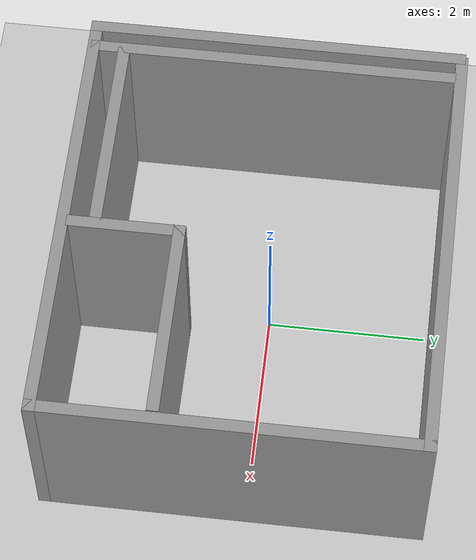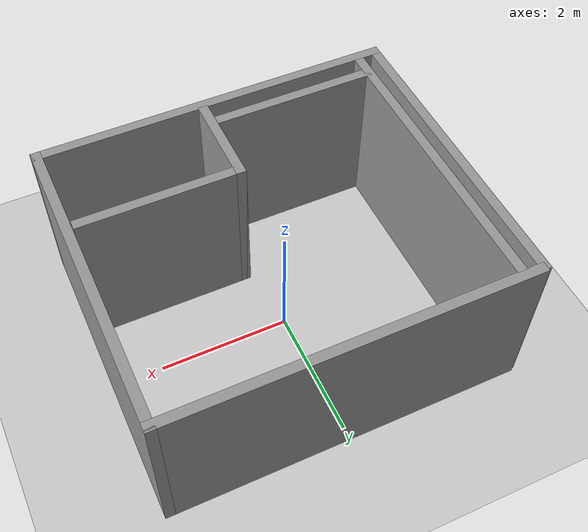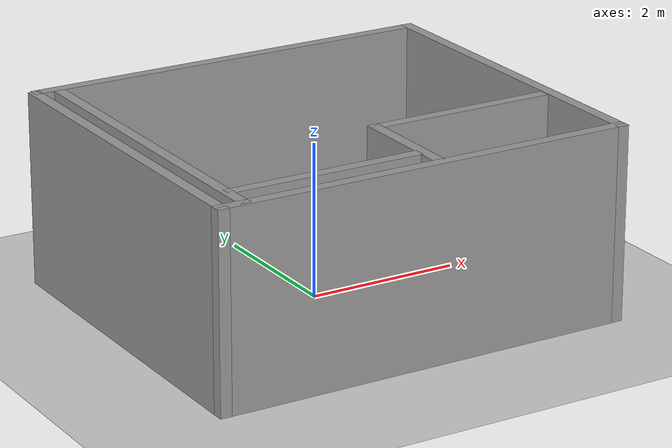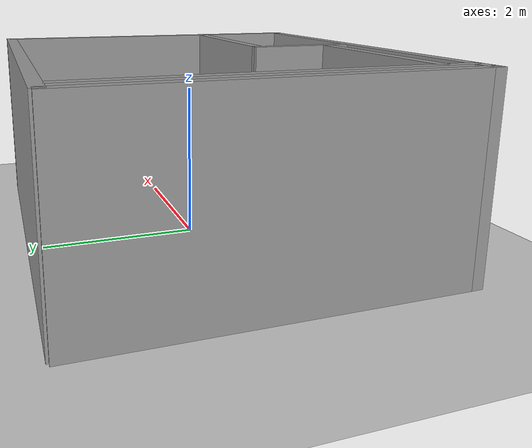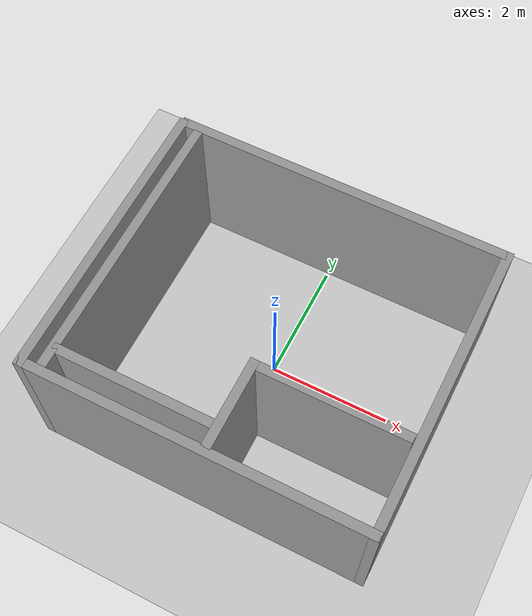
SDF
<sdf version="1.6">
 <world name="default">
  <light name="sun" type="directional">
   <pose>0 0 10 0 -0 0</pose>
   <diffuse>0.8 0.8 0.8 1</diffuse>
   <specular>0.1 0.1 0.1 1</specular>
   <attenuation>
    <range>1000</range>
    <constant>0.9</constant>
    <linear>0.01</linear>
    <quadratic>0.001</quadratic>
   </attenuation>
   <direction>-0.5 0.5 -1</direction>
  </light>
  <model name="ground_plane">
   <static>1</static>
   <link name="link">
    <collision name="collision">
     <geometry><plane><normal>0 0 1</normal><size>100 100</size></plane></geometry>
     <surface><friction><ode><mu>100</mu><mu2>50</mu2></ode></friction></surface>
    </collision>
    <visual name="visual">
     <cast_shadows>0</cast_shadows>
     <geometry><plane><normal>0 0 1</normal><size>100 100</size></plane></geometry>
     <material>
      <script><uri>file://media/materials/scripts/gazebo.material</uri><name>Gazebo/Grey</name></script>
     </material>
    </visual>
   </link>
  </model>
  <gravity>0 0 -9.8</gravity>
  <magnetic_field>6e-06 2.3e-05 -4.2e-05</magnetic_field>
  <atmosphere type="adiabatic"/>
  <physics name="default_physics" default="0" type="ode">
   <max_step_size>0.001</max_step_size>
   <real_time_factor>1</real_time_factor>
   <real_time_update_rate>1000</real_time_update_rate>
  </physics>
  <scene><ambient>0.4 0.4 0.4 1</ambient><background>0.7 0.7 0.7 1</background><shadows>1</shadows></scene>
  <spherical_coordinates>
   <surface_model>EARTH_WGS84</surface_model>
   <latitude_deg>0</latitude_deg>
   <longitude_deg>0</longitude_deg>
   <elevation>0</elevation>
   <heading_deg>0</heading_deg>
  </spherical_coordinates>
  <model name="room">
   <pose>0.011 -0.186 0 0 -0 0</pose>
   <link name="Wall_27">
    <collision name="Wall_27_Collision">
     <geometry><box><size>5.5 0.15 2.5</size></box></geometry>
     <pose>0 0 1.25 0 -0 0</pose>
    </collision>
    <visual name="Wall_27_Visual">
     <pose>0 0 1.25 0 -0 0</pose>
     <geometry><box><size>5.5 0.15 2.5</size></box></geometry>
     <material>
      <script><uri>file://media/materials/scripts/gazebo.material</uri><name>Gazebo/Grey</name></script>
      <ambient>1 1 1 1</ambient>
     </material>
    </visual>
    <pose>0.025 2.315 0 0 -0 0</pose>
   </link>
   <link name="Wall_28">
    <collision name="Wall_28_Collision">
     <geometry><box><size>4.78026 0.15 2.5</size></box></geometry>
     <pose>0 0 1.25 0 -0 0</pose>
    </collision>
    <visual name="Wall_28_Visual">
     <pose>0 0 1.25 0 -0 0</pose>
     <geometry><box><size>4.78026 0.15 2.5</size></box></geometry>
     <material>
      <script><uri>file://media/materials/scripts/gazebo.material</uri><name>Gazebo/Grey</name></script>
      <ambient>1 1 1 1</ambient>
     </material>
    </visual>
    <pose>2.7 0 0 0 0 -1.5708</pose>
   </link>
   <link name="Wall_30">
    <collision name="Wall_30_Collision">
     <geometry><box><size>5.55 0.15 2.5</size></box></geometry>
     <pose>0 0 1.25 0 -0 0</pose>
    </collision>
    <visual name="Wall_30_Visual">
     <pose>0 0 1.25 0 -0 0</pose>
     <geometry><box><size>5.55 0.15 2.5</size></box></geometry>
     <material>
      <script><uri>file://media/materials/scripts/gazebo.material</uri><name>Gazebo/Grey</name></script>
      <ambient>1 1 1 1</ambient>
     </material>
    </visual>
    <pose>0 -2.315 0 0 -0 3.14159</pose>
   </link>
   <link name="Wall_33">
    <collision name="Wall_33_Collision">
     <geometry><box><size>4.75 0.15 2.5</size></box></geometry>
     <pose>0 0 1.25 0 -0 0</pose>
    </collision>
    <visual name="Wall_33_Visual">
     <pose>0 0 1.25 0 -0 0</pose>
     <geometry><box><size>4.75 0.15 2.5</size></box></geometry>
     <material>
      <script><uri>file://media/materials/scripts/gazebo.material</uri><name>Gazebo/Grey</name></script>
      <ambient>1 1 1 1</ambient>
     </material>
    </visual>
    <pose>-2.7 -0.015 0 0 -0 1.5708</pose>
   </link>
   <link name="Wall_37">
    <collision name="Wall_37_Collision">
     <geometry><box><size>1.45 0.15 2.5</size></box></geometry>
     <pose>0 0 1.25 0 -0 0</pose>
    </collision>
    <visual name="Wall_37_Visual">
     <pose>0 0 1.25 0 -0 0</pose>
     <geometry><box><size>1.45 0.15 2.5</size></box></geometry>
     <material>
      <script><uri>file://media/materials/scripts/gazebo.material</uri><name>Gazebo/Grey</name></script>
      <ambient>1 1 1 1</ambient>
     </material>
    </visual>
    <pose>0.189 -1.543 0 0 -0 1.5708</pose>
   </link>
   <link name="Wall_39">
    <collision name="Wall_39_Collision">
     <geometry><box><size>2.5 0.15 2.5</size></box></geometry>
     <pose>0 0 1.25 0 -0 0</pose>
    </collision>
    <visual name="Wall_39_Visual">
     <pose>0 0 1.25 0 -0 0</pose>
     <geometry><box><size>2.5 0.15 2.5</size></box></geometry>
     <material>
      <script><uri>file://media/materials/scripts/gazebo.material</uri><name>Gazebo/Grey</name></script>
      <ambient>1 1 1 1</ambient>
     </material>
    </visual>
    <pose>1.364 -0.893 0 0 -0 0</pose>
   </link>
   <link name="Wall_48">
    <collision name="Wall_48_Collision">
     <geometry><box><size>4.6 0.15 2.5</size></box></geometry>
     <pose>0 0 1.25 0 -0 0</pose>
    </collision>
    <visual name="Wall_48_Visual">
     <pose>0 0 1.25 0 -0 0</pose>
     <geometry><box><size>4.6 0.15 2.5</size></box></geometry>
     <material>
      <script><uri>file://media/materials/scripts/gazebo.material</uri><name>Gazebo/Grey</name></script>
      <ambient>1 1 1 1</ambient>
     </material>
    </visual>
    <pose>-2.402 -0.049 0 0 -0 1.5708</pose>
   </link>
   <link name="Wall_59">
    <collision name="Wall_59_Collision">
     <geometry><box><size>2.55 0.15 2.5</size></box></geometry>
     <pose>0 0 1.25 0 -0 0</pose>
    </collision>
    <visual name="Wall_59_Visual">
     <pose>0 0 1.25 0 -0 0</pose>
     <geometry><box><size>2.55 0.15 2.5</size></box></geometry>
     <material>
      <script><uri>file://media/materials/scripts/gazebo.material</uri><name>Gazebo/Grey</name></script>
      <ambient>1 1 1 1</ambient>
     </material>
    </visual>
    <pose>-1.137 -1.925 0 0 -0 0</pose>
   </link>
   <static>1</static>
  </model>
 </world>
</sdf>
